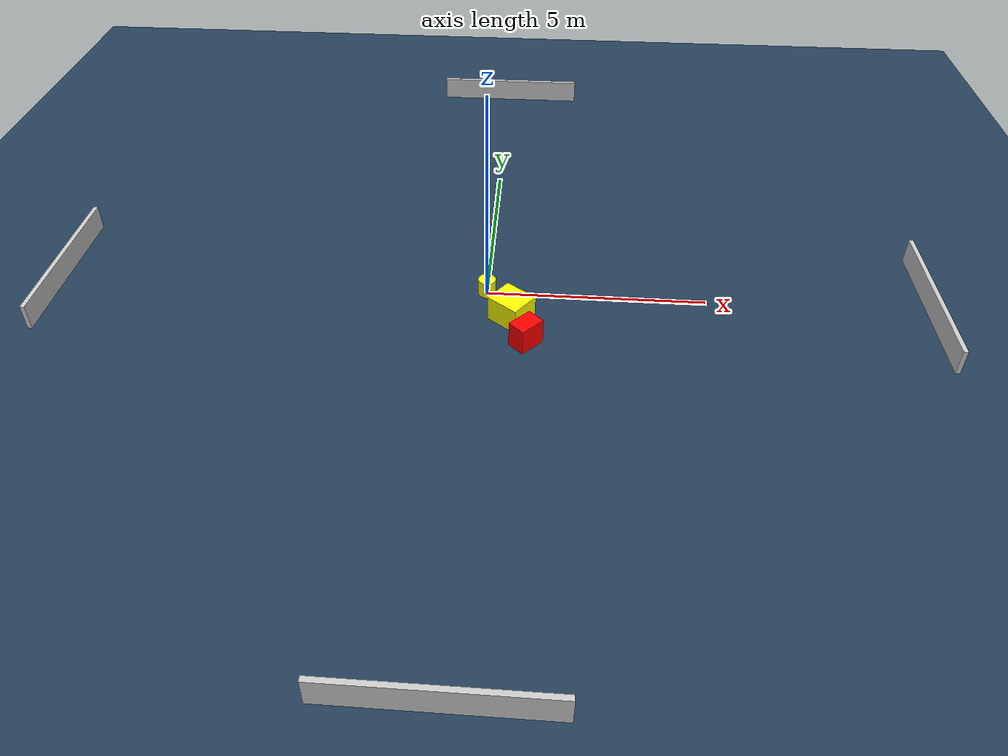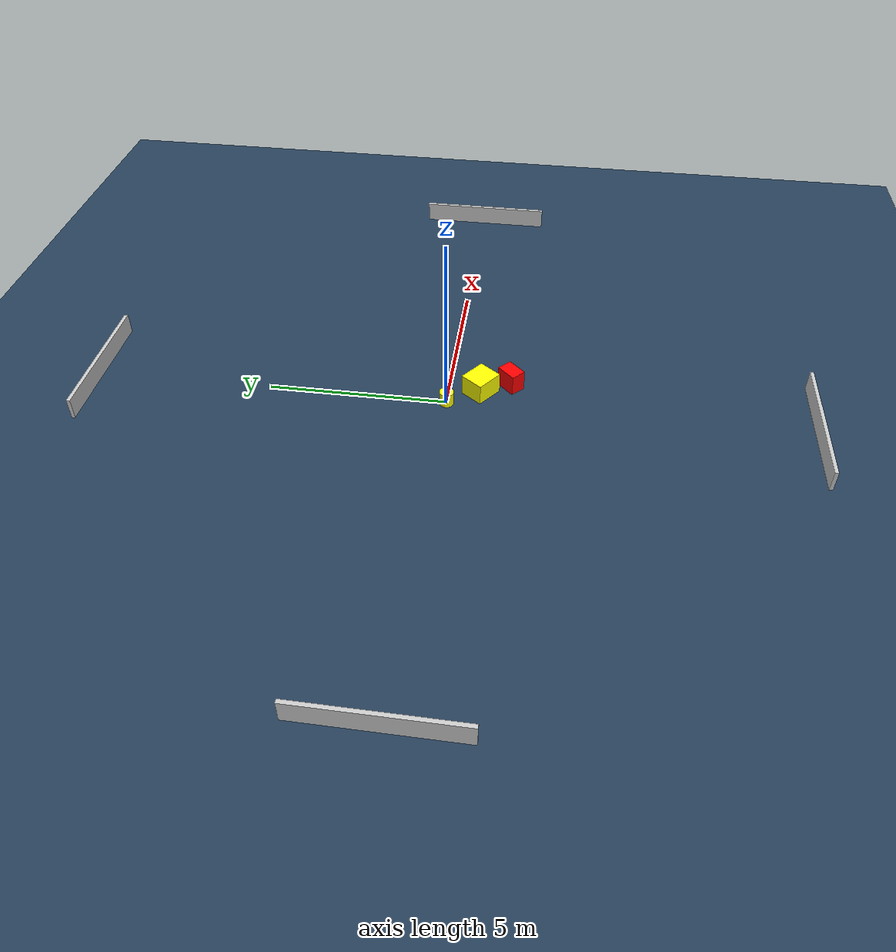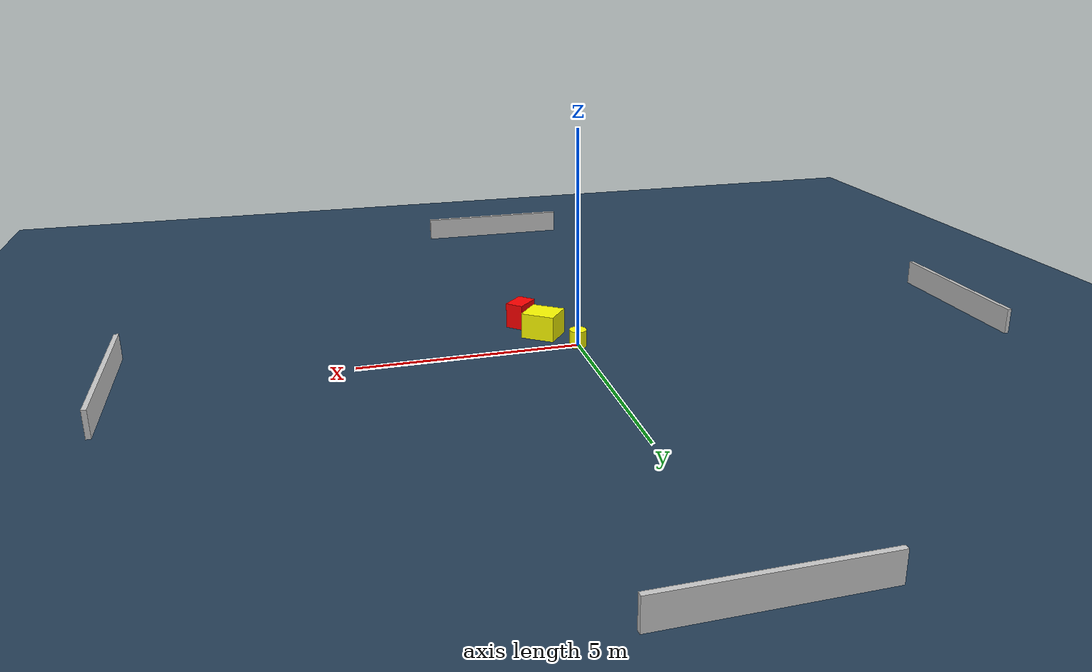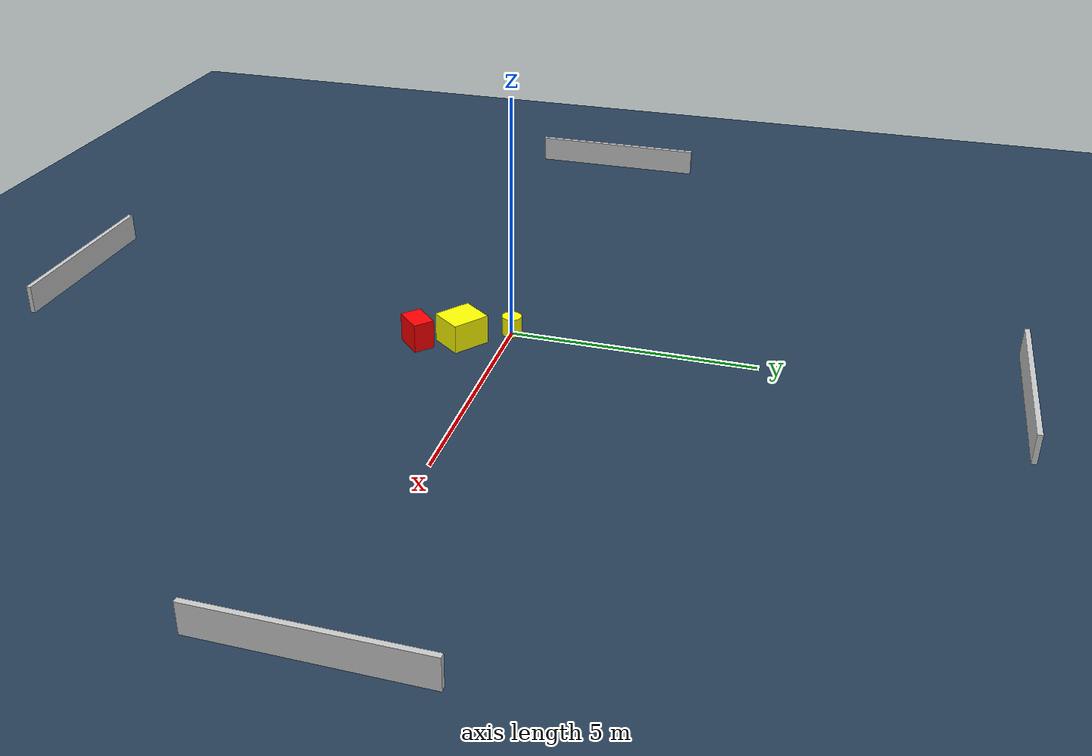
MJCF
<?xml version="1.0" ?>
<mujoco model="generated_environment">
  <option timestep="0.01" integrator="RK4" cone="elliptic"/>
  <default>
    <geom density="1"/>
  </default>
  <asset>
    <texture builtin="gradient" height="3072" name="skybox" rgb1="0.3 0.5 0.7" rgb2="0 0 0" type="skybox" width="512"/>
    <texture builtin="checker" height="300" name="groundplane" rgb1="0.2 0.3 0.4" rgb2="0.1 0.2 0.3" type="2d" width="300"/>
    <material name="groundplane" reflectance="0.2" texrepeat="5 5" texture="groundplane"/>
  </asset>
  <worldbody>
    <light dir="0 0 -1" directional="true" pos="0 0 1.5"/>
    <geom condim="3" friction="0.5 0.005 0.001" material="groundplane" name="floor" pos="0 0 0" size="0 0 0.05" type="plane"/>
    <body name="walls">
      <geom name="wall_1" condim="4" pos="-10.0 0.0 0.3" rgba="0.800000011920929 0.800000011920929 0.800000011920929 1.0" size="0.05 2.0 0.3" type="box"/>
      <geom name="wall_2" condim="4" pos="10.0 0.0 0.3" rgba="0.800000011920929 0.800000011920929 0.800000011920929 1.0" size="0.05 2.0 0.3" type="box"/>
      <geom name="wall_3" condim="4" pos="0.0 -10.0 0.3" rgba="0.800000011920929 0.800000011920929 0.800000011920929 1.0" size="2.0 0.05 0.3" type="box"/>
      <geom name="wall_4" condim="4" pos="0.0 10.0 0.3" rgba="0.800000011920929 0.800000011920929 0.800000011920929 1.0" size="2.0 0.05 0.3" type="box"/>
    </body>
    <body name="robot">
      <joint name="joint_x" type="slide" pos="0 0 0" axis="1 0 0"/>
      <joint name="joint_y" type="slide" pos="0 0 0" axis="0 1 0"/>
      <geom name="robot" type="cylinder" pos="0.0 0.0 0.2" size="0.2 0.2 0.0" mass="5.0" friction="1.0 0.005 0.0001" condim="4" rgba="1.0 1.0 0.0 1.0"/>
    </body>
    <body name="obstacle_1_movable">
      <geom name="obstacle_1_movable" condim="4" pos="0.6053178313825865 -0.880287682334409 0.3" euler="0 0 52.94769549327004" friction="0.0 0.005 0.001" rgba="1.0 1.0 0.0 1.0" size="0.35047073641031784 0.3979447750716045 0.3" type="box" mass="0.1"/>
      <joint type="free"/>
    </body>
    <body name="obstacle_2_static">
      <geom name="obstacle_2_static" condim="4" pos="0.9606547039947606 -1.6987817752114824 0.3" euler="0 0 46.045097799103466" friction="0.0 0.005 0.001" rgba="1.0 0.0 0.0 1.0" size="0.3052503166134635 0.21753131781271257 0.3" type="box"/>
    </body>
  </worldbody>
  <actuator>
    <motor name="actuator_x" joint="joint_x" gear="1" ctrlrange="-1 1"/>
    <motor name="actuator_y" joint="joint_y" gear="1" ctrlrange="-1 1"/>
  </actuator>
</mujoco>
